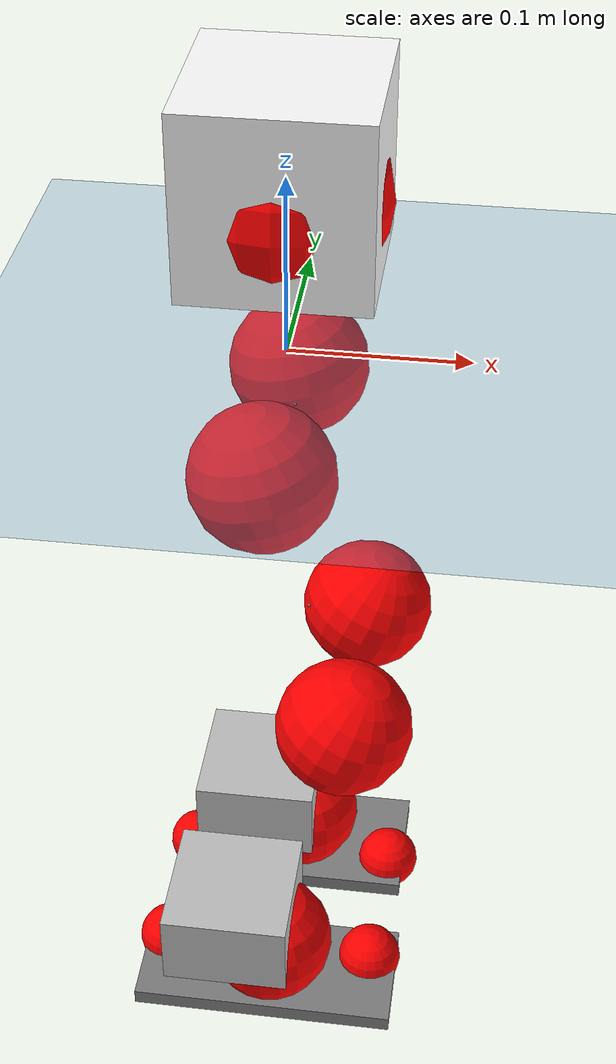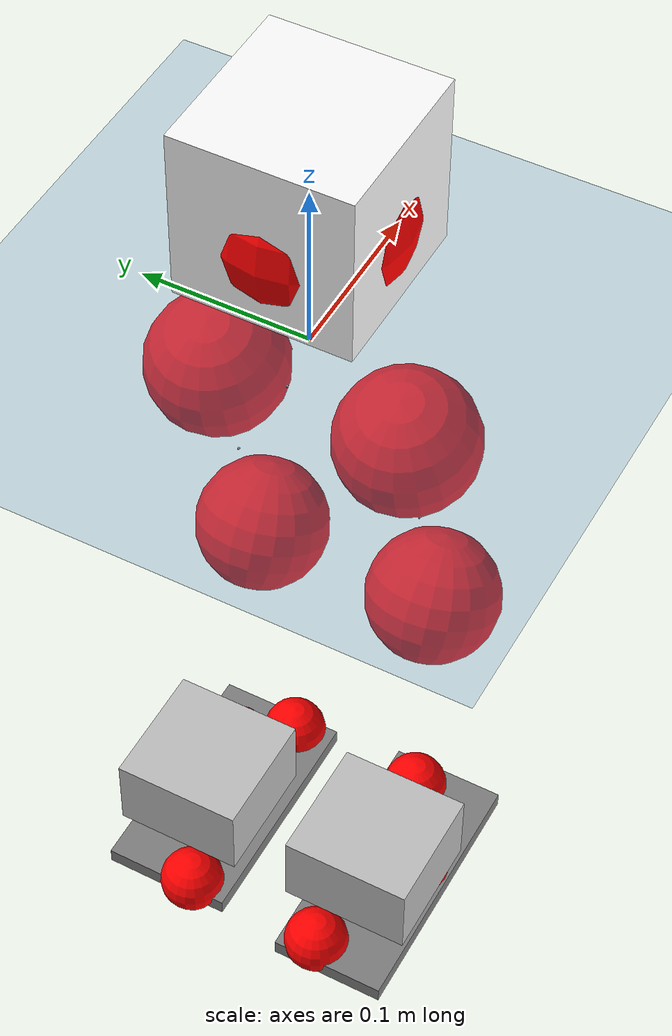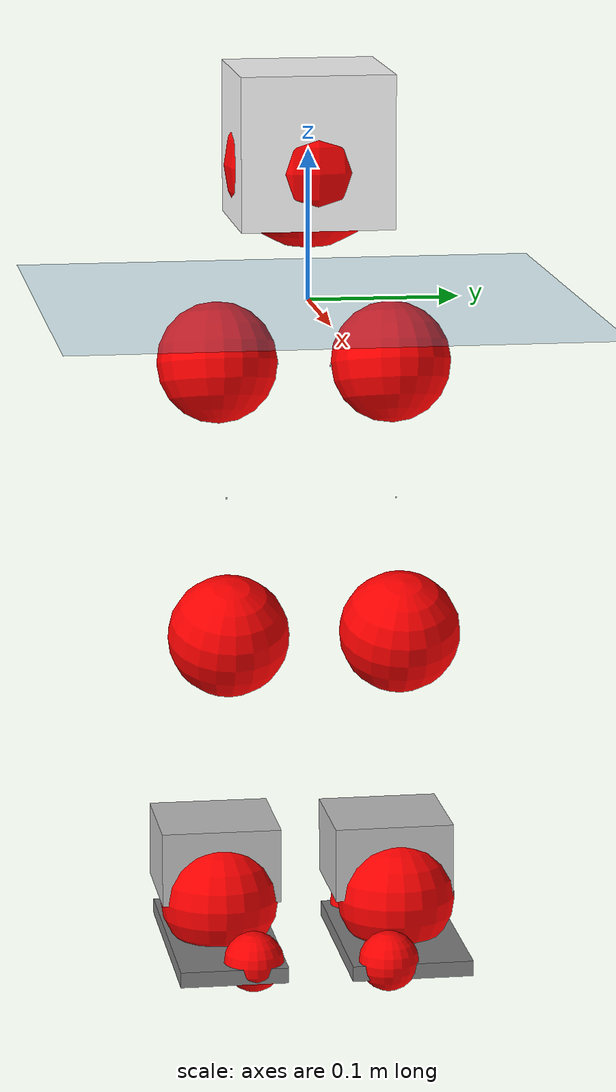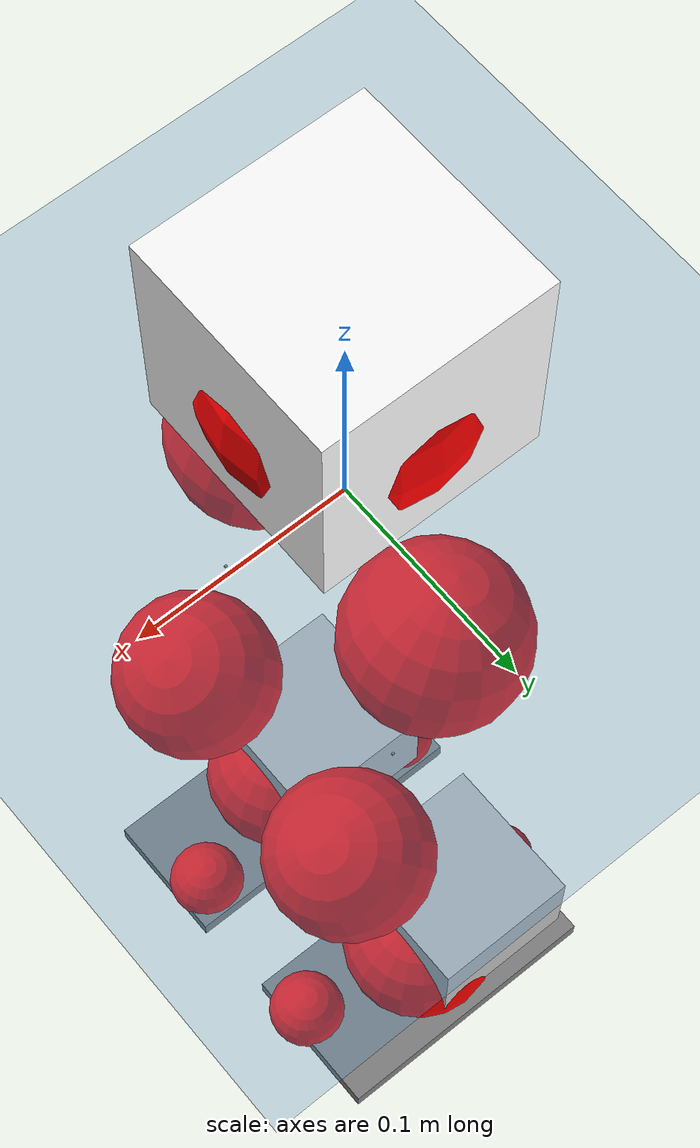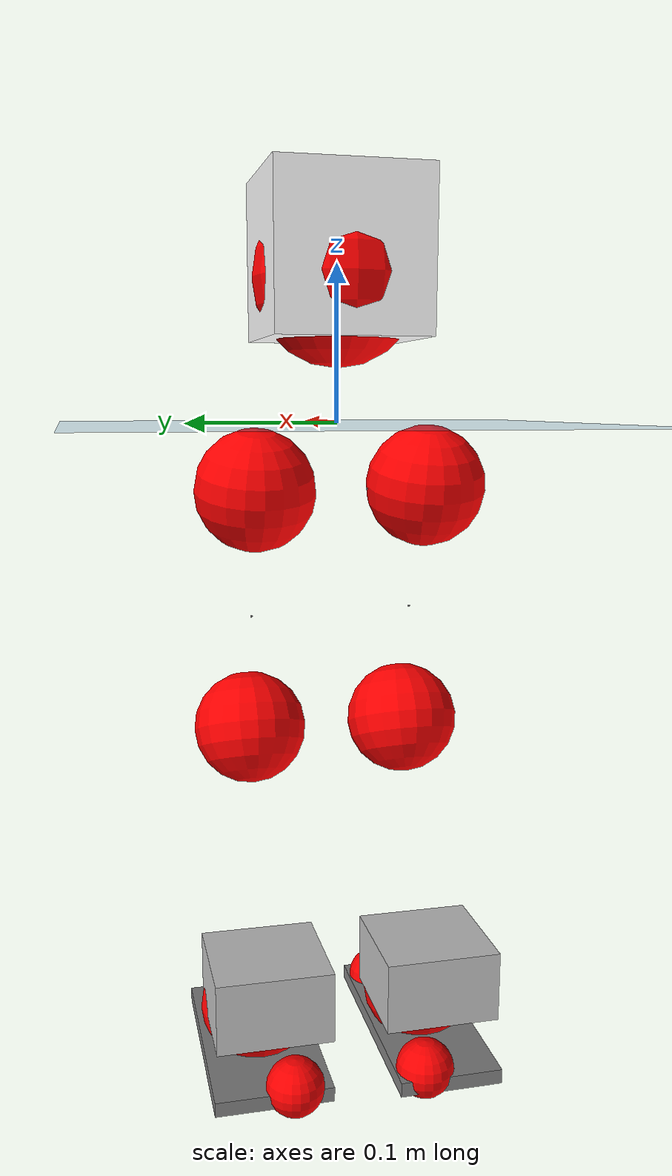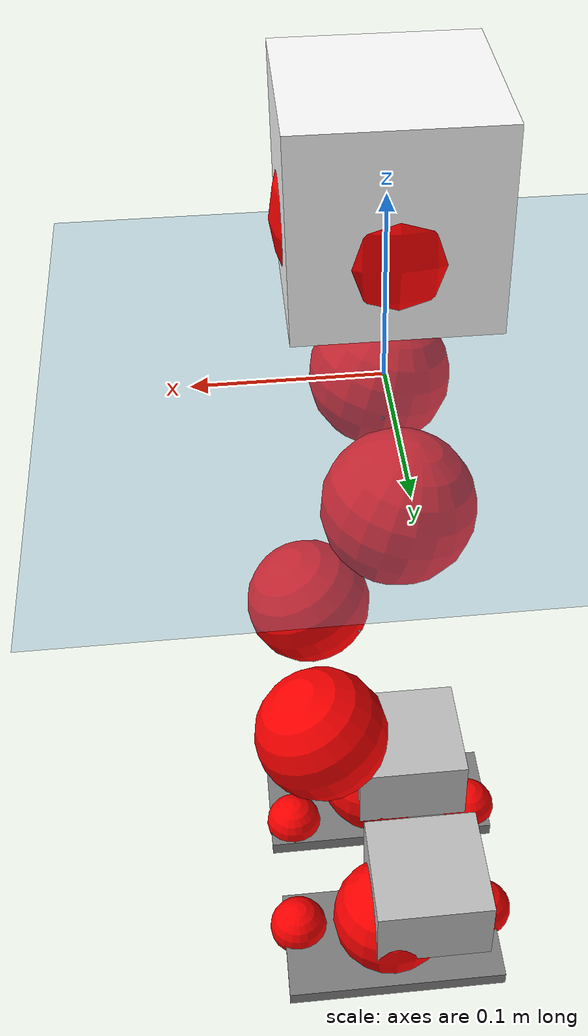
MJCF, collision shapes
<mujoco model="pi_12dof_release_v1">
  <compiler angle="radian" assetdir="assets" balanceinertia="true" inertiafromgeom="false"/>

  <option timestep="0.005" density="1.2" viscosity="2e-05"/>

  <size nkey="1"/>

  <visual>
    <quality shadowsize="8192"/>
    <map shadowclip="0.5"/>
  </visual>

  <default>
    <default class="/">
      <joint armature="0.01" damping="0.01" frictionloss="0.01"/>
      <geom contype="0" conaffinity="0" group="1" solref="-1000 -80"/>
      <site size="0.01 0.005 0.005" group="5"/>
      <general forcelimited="true" biastype="affine" gainprm="20" biasprm="0 -20 -0.5"/>
      <default class="foot">
        <geom size="0.0845 0.036 0.005" type="box" condim="6" group="4" priority="1" friction="0.9 0.2 0.2" solimp="0.015 1 0.005"/>
      </default>
      <default class="reward_collision_sphere">
        <geom group="5" rgba="1 0 0 1"/>
      </default>
    </default>
  </default>

  <asset>
    <texture type="skybox" colorspace="auto" name="//unnamed_texture_0" builtin="gradient" rgb1="0.95 0.95 0.95" rgb2="0.95 0.95 0.95" width="100" height="600"/>
    <texture type="2d" colorspace="auto" name="texplane" builtin="checker" rgb1="0.345 0.575 0.748" rgb2="0.345 0.575 0.748" markrgb="1 1 1" width="512" height="512"/>
    <material name="MatPlane" class="/" texture="texplane" texuniform="true" texrepeat="2 2" specular="0.9"/>
    <mesh name="baselink_1" class="/" file="baselink_1.STL"/>
    <mesh name="r_hip_pitch_link" class="/" file="r_hip_pitch_link.STL"/>
    <mesh name="r_hip_roll_link" class="/" file="r_hip_roll_link.STL"/>
    <mesh name="r_thigh_link" class="/" file="r_thigh_link.STL"/>
    <mesh name="r_calf_link" class="/" file="r_calf_link.STL"/>
    <mesh name="r_ankle_pitch_link" class="/" file="r_ankle_pitch_link.STL"/>
    <mesh name="r_ankle_roll_link" class="/" file="r_ankle_roll_link.STL"/>
    <mesh name="l_hip_pitch_link" class="/" file="l_hip_pitch_link.STL"/>
    <mesh name="l_hip_roll_link" class="/" file="l_hip_roll_link.STL"/>
    <mesh name="l_thigh_link" class="/" file="l_thigh_link.STL"/>
    <mesh name="l_calf_link" class="/" file="l_calf_link.STL"/>
    <mesh name="l_ankle_pitch_link" class="/" file="l_ankle_pitch_link.STL"/>
    <mesh name="l_ankle_roll_link" class="/" file="l_ankle_roll_link.STL"/>
  </asset>

  <worldbody>
    <geom name="floor" class="/" size="100 100 0.125" type="plane" group="0" material="MatPlane"/>
    <light name="toplight_shadow" class="/" pos="0 0 5" dir="0.0990148 0.0990148 -0.990148" type="directional" ambient="0.04 0.04 0.04" diffuse="0.55 0.55 0.55" specular="0.12 0.12 0.12"/>
    <light name="toplight_fill" class="/" pos="0 0 5" dir="0.0990148 0.0990148 -0.990148" type="directional" castshadow="false" ambient="0.04 0.04 0.04" diffuse="0.3 0.3 0.3" specular="0.08 0.08 0.08"/>
    <body name="trunk" pos="0.000265557 -0.000307117 0.000657952" quat="1 0.000436815 -0.000193063 -0.000581394">
      <inertial pos="0.000543234 -0.00281188 0.0507406" quat="0.693684 0.0108151 0.00768829 0.720158" mass="2.26205" diaginertia="0.00922551 0.00210563 0.0143199"/>
      <joint name="//unnamed_joint_0" type="free"/>
      <geom name="//unnamed_geom_1" class="/" type="mesh" density="0" rgba="1 1 1 1" mesh="baselink_1"/>
      <geom name="//unnamed_geom_2" class="/" size="0.0504092 0.0504092 0.0504092" pos="0 0 0.102798" type="box" rgba="1 1 1 1"/>
      <geom name="//unnamed_geom_3" class="reward_collision_sphere" size="0.0554501" pos="0 0 0.0899486"/>
      <site name="imu" class="/" pos="0.0124248 -0.000502599 -0.0124966" size="0.0100818"/>
      <camera name="track" class="/" pos="0 -1.49946 0" quat="0.707107 0.707107 0 0" mode="trackcom"/>
      <camera name="ego_camera" class="/" pos="0.074238 0 0.231296" quat="-0.5 -0.5 0.5 0.5"/>
      <body name="r_hip_pitch_link" pos="-0.00236712 -0.0199118 -0.0437756" quat="0.992192 1.77894e-06 -0.124723 -1.29799e-05">
        <inertial pos="0.000847049 -0.0450933 -0.000381098" quat="-0.019103 0.706167 -0.028217 0.707225" mass="0.379764" diaginertia="0.000101534 2.19107e-05 0.000283442"/>
        <joint name="r_hip_pitch_joint" class="/" pos="0 0 0" axis="0.000523805 -0.999995 0.00315696" stiffness="0.0118769" range="-1.77141 1.20413" armature="0.00874338" damping="0.0134246" frictionloss="0.00942602"/>
        <geom name="//unnamed_geom_4" class="/" type="mesh" density="0" rgba="0.75294 0.75294 0.75294 1" mesh="r_hip_pitch_link"/>
        <geom name="//unnamed_geom_5" class="/" size="0.000504092 0.000504092 0.000504092" type="box" rgba="0.75294 0.75294 0.75294 1"/>
        <body name="r_hip_roll_link" pos="-0.00206457 -0.0399954 0.00244687" quat="0.999999 -0.000864709 0.000428822 0.000960399">
          <inertial pos="-0.00292555 -0.000396982 -0.0769857" quat="0.708574 -0.0833302 -0.0694873 0.697245" mass="0.388447" diaginertia="0.000321033 6.48292e-05 0.000455569"/>
          <joint name="r_hip_roll_joint" class="/" pos="0 0 0" axis="-0.999903 0.0126454 -0.00591267" range="-0.142607 0.501621" armature="0.00877583" damping="0.00146305" frictionloss="0.0112712"/>
          <geom name="//unnamed_geom_6" class="/" type="mesh" density="0" rgba="0.75294 0.75294 0.75294 1" mesh="r_hip_roll_link"/>
          <geom name="//unnamed_geom_7" class="/" size="0.000504092 0.000504092 0.000504092" type="box" rgba="0.75294 0.75294 0.75294 1"/>
          <geom name="//unnamed_geom_8" class="reward_collision_sphere" size="0.0403273"/>
          <body name="r_thigh_link" pos="0.00256328 0.00275955 -0.0900416" quat="1 -0.000118931 7.39198e-05 -9.51365e-05">
            <inertial pos="0.00047232 1.59499e-05 -0.0629201" quat="0.736906 0.67599 0.000120409 0.00251872" mass="0.117265" diaginertia="0.000115959 2.24339e-05 0.000203472"/>
            <joint name="r_thigh_joint" class="/" pos="0 0 0" axis="0.00519865 -0.000188697 -0.999986" stiffness="0.00476222" range="-0.356588 0.612696" armature="0.0114256" damping="0" frictionloss="0.0110339"/>
            <geom name="//unnamed_geom_9" class="/" type="mesh" density="0" rgba="0.75294 0.75294 0.75294 1" mesh="r_thigh_link"/>
            <geom name="//unnamed_geom_10" class="/" size="0.000504092 0.000504092 0.000504092" type="box" rgba="0.75294 0.75294 0.75294 1"/>
            <body name="r_calf_link" pos="-0.00168812 -0.00143836 -0.0906238" quat="0.947657 -1.00221e-05 0.319291 -1.25447e-05">
              <inertial pos="-0.00303179 -0.00266135 -0.0923693" quat="0.999945 0.00690864 0.00148679 0.0077833" mass="0.830273" diaginertia="0.0031874 0.000844404 0.000582674"/>
              <joint name="r_calf_joint" class="/" pos="0 0 0" axis="0.00182941 -0.999919 0.0126217" range="-1.65392 0.672468" armature="0.00910953" damping="0.00927935" frictionloss="0.00973006"/>
              <geom name="//unnamed_geom_11" class="/" type="mesh" density="0" rgba="0.75294 0.75294 0.75294 1" mesh="r_calf_link"/>
              <geom name="//unnamed_geom_12" class="/" size="0.000504092 0.000504092 0.000504092" type="box" rgba="0.75294 0.75294 0.75294 1"/>
              <geom name="//unnamed_geom_13" class="reward_collision_sphere" size="0.0403273"/>
              <body name="r_ankle_pitch_link" pos="0.00237389 -0.00110393 -0.182188" quat="0.979971 0.00110928 -0.199134 -0.000764162">
                <inertial pos="0.00733245 0.00281755 -0.00249982" quat="-0.002901 0.702894 0.0065369 0.711259" mass="0.188672" diaginertia="0.000286246 5.12562e-05 0.0004374"/>
                <joint name="r_ankle_pitch_joint" class="/" pos="0 0 0" axis="0.0104053 -0.999928 0.00598888" range="-1.24359 0.5534" armature="0.0113271" damping="0" frictionloss="0.0105392"/>
                <geom name="//unnamed_geom_14" class="/" type="mesh" density="0" rgba="0.75294 0.75294 0.75294 1" mesh="r_ankle_pitch_link"/>
                <geom name="//unnamed_geom_15" class="/" size="0.0393192 0.0403273 0.0252046" type="box" rgba="0.75294 0.75294 0.75294 1"/>
                <body name="r_ankle_roll_link" pos="0.0727316 0.000184616 0.000821688" quat="0.999999 0.000671658 0.000877789 0.000175338">
                  <inertial pos="-0.0264638 0.000170095 -0.0190712" quat="0.568449 0.430303 0.428995 0.554679" mass="0.566248" diaginertia="0.00113031 0.00024793 0.00102857"/>
                  <joint name="r_ankle_roll_joint" class="/" pos="0 0 0" axis="-0.999929 -0.00355812 -0.0113716" stiffness="0.00308131" range="-0.099629 0.161021" armature="0.0112667" damping="0.0138581" frictionloss="0.00997865"/>
                  <geom name="//unnamed_geom_16" class="/" type="mesh" density="0" rgba="0.75294 0.75294 0.75294 1" mesh="r_ankle_roll_link"/>
                  <geom name="//unnamed_geom_17" class="/" type="mesh" rgba="0.75294 0.75294 0.75294 1" mesh="r_ankle_roll_link"/>
                  <geom name="right_foot" class="foot" size="0.0829357 0.0360996 0.00519719" pos="-0.0504818 0 -0.0565391"/>
                  <geom name="//unnamed_geom_19" class="reward_collision_sphere" size="0.0403273" pos="-0.049492 0 -0.0256996"/>
                  <geom name="//unnamed_geom_20" class="reward_collision_sphere" size="0.0201637" pos="0.0148476 0.0149946 -0.0513992"/>
                  <geom name="//unnamed_geom_21" class="reward_collision_sphere" size="0.0201637" pos="-0.118781 0.0149946 -0.0513992"/>
                  <site name="right_foot" class="foot" pos="-0.0504818 0 -0.0565391" size="0.0100818"/>
                </body>
              </body>
            </body>
          </body>
        </body>
      </body>
      <body name="l_hip_pitch_link" pos="0.00197272 0.0149592 -0.0449457" quat="0.992188 4.42435e-05 -0.124748 7.31222e-06">
        <inertial pos="0.00113204 0.0427821 -0.0024997" quat="-0.0491999 0.707061 0.0383693 0.704395" mass="0.410995" diaginertia="0.000128166 2.58379e-05 0.000353816"/>
        <joint name="l_hip_pitch_joint" class="/" pos="0 0 0" axis="0.00103095 0.999999 -0.00121585" range="-1.26786 1.75833" armature="0.0101112" damping="0.023642" frictionloss="0.00875339"/>
        <geom name="//unnamed_geom_22" class="/" type="mesh" density="0" rgba="0.75294 0.75294 0.75294 1" mesh="l_hip_pitch_link"/>
        <geom name="//unnamed_geom_23" class="/" size="0.000504092 0.000504092 0.000504092" type="box" rgba="0.75294 0.75294 0.75294 1"/>
        <body name="l_hip_roll_link" pos="-0.0027032 0.0406438 0.00190967" quat="1 -0.000121361 -1.06747e-05 -0.000389302">
          <inertial pos="-0.00379691 0.000545523 -0.0803753" quat="0.700806 -0.0743667 -0.0788615 0.705069" mass="0.378903" diaginertia="0.000298148 6.56747e-05 0.000439624"/>
          <joint name="l_hip_roll_joint" class="/" pos="0 0 0" axis="-0.999997 -0.00220869 -0.00128543" range="-0.488206 0.129947" armature="0.0102018" damping="0.0197785" frictionloss="0.00895236"/>
          <geom name="//unnamed_geom_24" class="/" type="mesh" density="0" rgba="0.75294 0.75294 0.75294 1" mesh="l_hip_roll_link"/>
          <geom name="//unnamed_geom_25" class="/" size="0.000504092 0.000504092 0.000504092" type="box" rgba="0.75294 0.75294 0.75294 1"/>
          <geom name="//unnamed_geom_26" class="reward_collision_sphere" size="0.0403273"/>
          <body name="l_thigh_link" pos="-0.00206198 0.000548277 -0.0900441" quat="1 0.000109887 -9.39249e-05 3.55009e-05">
            <inertial pos="0.00215314 0.00138132 -0.0617631" quat="0.670884 0.741482 -0.000615484 -0.0109309" mass="0.118124" diaginertia="0.000117272 2.36887e-05 0.000207882"/>
            <joint name="l_thigh_joint" class="/" pos="0 0 0" axis="-0.000259778 -0.000878088 -1" range="-0.647969 0.248496" armature="0.0103164" damping="0.00939416" frictionloss="0.0103588"/>
            <geom name="//unnamed_geom_27" class="/" type="mesh" density="0" rgba="0.75294 0.75294 0.75294 1" mesh="l_thigh_link"/>
            <geom name="//unnamed_geom_28" class="/" size="0.000504092 0.000504092 0.000504092" type="box" rgba="0.75294 0.75294 0.75294 1"/>
            <body name="l_calf_link" pos="0.000943166 -0.00115702 -0.0889331" quat="0.947553 0.000646631 0.319599 0.000182237">
              <inertial pos="-0.00201388 0.00391156 -0.0918867" quat="0.999955 -0.00207012 -0.00596609 0.0070135" mass="0.842213" diaginertia="0.00325174 0.000814487 0.000598388"/>
              <joint name="l_calf_joint" class="/" pos="0 0 0" axis="0.00938701 0.999899 0.0106271" range="-0.655641 1.66819" armature="0.0103309" damping="0" frictionloss="0.0105149"/>
              <geom name="//unnamed_geom_29" class="/" type="mesh" density="0" rgba="0.75294 0.75294 0.75294 1" mesh="l_calf_link"/>
              <geom name="//unnamed_geom_30" class="/" size="0.000504092 0.000504092 0.000504092" type="box" rgba="0.75294 0.75294 0.75294 1"/>
              <geom name="//unnamed_geom_31" class="reward_collision_sphere" size="0.0403273"/>
              <body name="l_ankle_pitch_link" pos="0.00207365 0.00186667 -0.182958" quat="0.97985 0.000767851 -0.199732 0.000386073">
                <inertial pos="0.00519067 0.00146944 -0.000833271" quat="-0.00213076 0.707824 0.0034827 0.706377" mass="0.168518" diaginertia="0.00027325 5.13767e-05 0.000411983"/>
                <joint name="l_ankle_pitch_joint" class="/" pos="0 0 0" axis="0.0009062 0.999999 0.000593609" range="-0.549201 1.25211" armature="0.00888882" damping="0.0065298" frictionloss="0.010729"/>
                <geom name="//unnamed_geom_32" class="/" type="mesh" density="0" rgba="0.75294 0.75294 0.75294 1" mesh="l_ankle_pitch_link"/>
                <geom name="//unnamed_geom_33" class="/" size="0.0393192 0.0403273 0.0252046" type="box" rgba="0.75294 0.75294 0.75294 1"/>
                <body name="l_ankle_roll_link" pos="0.0747346 0.00273657 -0.000557793" quat="0.999999 0.000251243 -0.000600035 -0.000940446">
                  <inertial pos="-0.0213519 -0.00249302 -0.0190361" quat="0.557238 0.4251 0.446479 0.556266" mass="0.537591" diaginertia="0.00104546 0.000244423 0.000966155"/>
                  <joint name="l_ankle_roll_joint" class="/" pos="0 0 0" axis="-1 7.1713e-06 0.000102324" range="-0.097284 0.0995027" armature="0.0116395" damping="0.021133" frictionloss="0.0108553"/>
                  <geom name="//unnamed_geom_34" class="/" type="mesh" density="0" rgba="0.75294 0.75294 0.75294 1" mesh="l_ankle_roll_link"/>
                  <geom name="//unnamed_geom_35" class="/" type="mesh" rgba="0.75294 0.75294 0.75294 1" mesh="l_ankle_roll_link"/>
                  <geom name="left_foot" class="foot" size="0.075475 0.0406496 0.00516679" pos="-0.0504818 0 -0.0565391"/>
                  <geom name="//unnamed_geom_37" class="reward_collision_sphere" size="0.0403273" pos="-0.049492 0 -0.0256996"/>
                  <geom name="//unnamed_geom_38" class="reward_collision_sphere" size="0.0201637" pos="0.0148476 -0.0149946 -0.0513992"/>
                  <geom name="//unnamed_geom_39" class="reward_collision_sphere" size="0.0201637" pos="-0.118781 -0.0149946 -0.0513992"/>
                  <site name="left_foot" class="foot" pos="-0.0504818 0 -0.0565391" size="0.0100818"/>
                </body>
              </body>
            </body>
          </body>
        </body>
      </body>
    </body>
  </worldbody>

  <contact>
    <pair class="/" geom1="floor" geom2="right_foot" name="//unnamed_contact_1"/>
    <pair class="/" geom1="floor" geom2="left_foot" name="//unnamed_contact_0"/>
  </contact>

  <actuator>
    <general name="r_hip_pitch_joint" class="/" joint="r_hip_pitch_joint" forcerange="-23.4429 23.4429" gainprm="19.3761" biasprm="0 -19.3761 -0.491384"/>
    <general name="r_hip_roll_joint" class="/" joint="r_hip_roll_joint" forcerange="-20.9631 20.9631" gainprm="19.3761" biasprm="0 -19.3761 -0.491384"/>
    <general name="r_thigh_joint" class="/" joint="r_thigh_joint" forcerange="-20.6388 20.6388" gainprm="19.3761" biasprm="0 -19.3761 -0.491384"/>
    <general name="r_calf_joint" class="/" joint="r_calf_joint" forcerange="-23.1858 23.1858" gainprm="19.3761" biasprm="0 -19.3761 -0.491384"/>
    <general name="r_ankle_pitch_joint" class="/" joint="r_ankle_pitch_joint" forcerange="-20.3965 20.3965" gainprm="19.3761" biasprm="0 -19.3761 -0.491384"/>
    <general name="r_ankle_roll_joint" class="/" joint="r_ankle_roll_joint" forcerange="-21.9813 21.9813" gainprm="19.3761" biasprm="0 -19.3761 -0.491384"/>
    <general name="l_hip_pitch_joint" class="/" joint="l_hip_pitch_joint" forcerange="-18.9585 18.9585" gainprm="19.3761" biasprm="0 -19.3761 -0.491384"/>
    <general name="l_hip_roll_joint" class="/" joint="l_hip_roll_joint" forcerange="-19.3483 19.3483" gainprm="19.3761" biasprm="0 -19.3761 -0.491384"/>
    <general name="l_thigh_joint" class="/" joint="l_thigh_joint" forcerange="-20.7373 20.7373" gainprm="19.3761" biasprm="0 -19.3761 -0.491384"/>
    <general name="l_calf_joint" class="/" joint="l_calf_joint" forcerange="-21.5015 21.5015" gainprm="19.3761" biasprm="0 -19.3761 -0.491384"/>
    <general name="l_ankle_pitch_joint" class="/" joint="l_ankle_pitch_joint" forcerange="-23.3148 23.3148" gainprm="19.3761" biasprm="0 -19.3761 -0.491384"/>
    <general name="l_ankle_roll_joint" class="/" joint="l_ankle_roll_joint" forcerange="-21.7988 21.7988" gainprm="19.3761" biasprm="0 -19.3761 -0.491384"/>
  </actuator>

  <sensor>
    <gyro site="imu" name="imu_angular_velocity"/>
    <velocimeter site="imu" name="imu_linear_velocity"/>
    <framelinvel objtype="site" objname="left_foot" name="left_foot_global_linear_velocity"/>
    <framelinvel objtype="site" objname="right_foot" name="right_foot_global_linear_velocity"/>
  </sensor>

  <keyframe>
    <key name="home" qpos="0 0 0.291 1 0 0 0 0.4 0 0 -0.8 0.4 0 -0.4 0 0 0.8 -0.4 0"/>
  </keyframe>
</mujoco>
